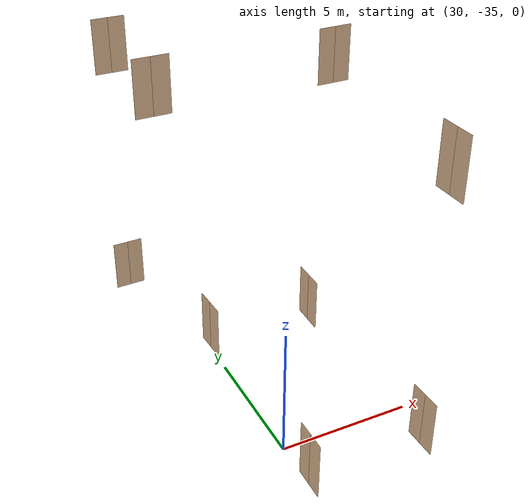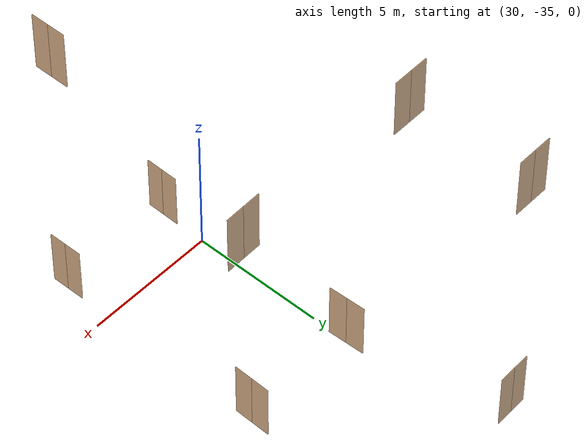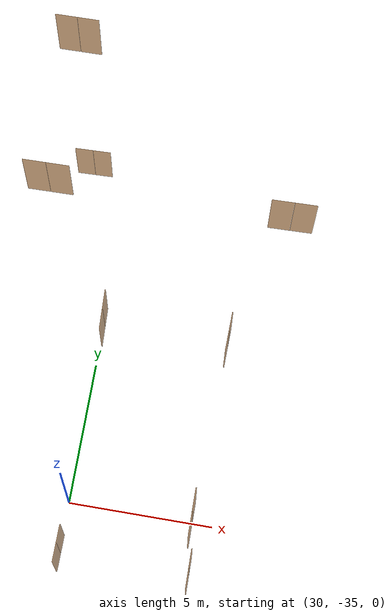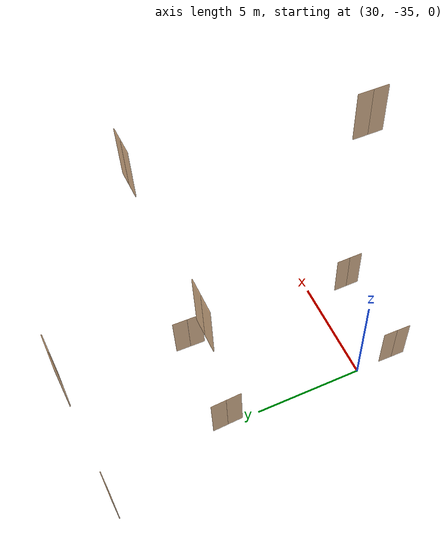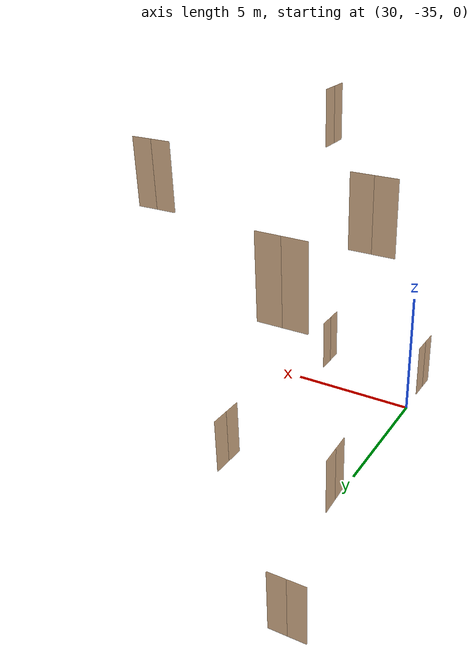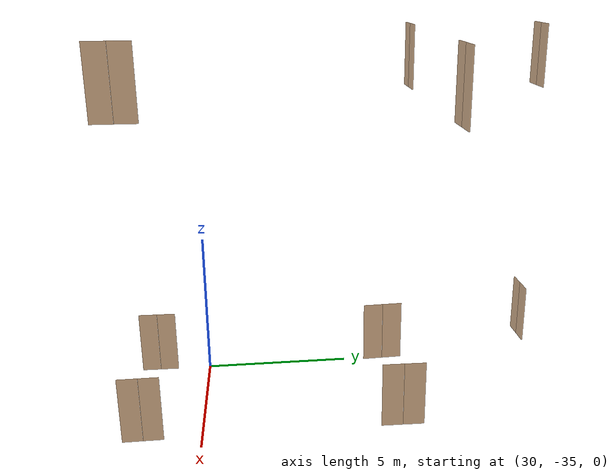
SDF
<sdf version="1.7">
 <world name="sim_world">
  <model name="door28">
   <pose>28.62821711822142 -22.812442178283362 0.0 0 0 -3.111123336385483</pose>
   <link name="right">
    <pose>0.31771576533876944 0 1.11 0 0 0</pose>
    <visual name="right_visual">
     <geometry><box><size>0.6254315306775389 0.03 2.2</size></box></geometry>
     <material>
      <ambient>0.5 0.25 0 0.6</ambient>
      <diffuse>0.5 0.25 0 0.6</diffuse>
      <pbr><metal><metalness>0.0</metalness></metal></pbr>
     </material>
    </visual>
    <collision name="right_collision">
     <geometry><box><size>0.6254315306775389 0.03 2.2</size></box></geometry>
     <surface><contact><collide_bitmask>0x02</collide_bitmask></contact></surface>
    </collision>
    <inertial>
     <mass>50.0</mass>
     <inertia><ixx>20.17041666666667</ixx><iyy>21.79651916485688</iyy><izz>1.6336024981902053</izz></inertia>
    </inertial>
   </link>
   <joint name="right_joint" type="revolute">
    <parent>world</parent>
    <child>right</child>
    <axis><xyz>0 0 -1</xyz><limit><lower>0</lower><upper>1.57</upper></limit></axis>
    <pose>0.31771576533876944 0 0 0 0 0</pose>
   </joint>
   <link name="left">
    <pose>-0.31771576533876944 0 1.11 0 0 0</pose>
    <visual name="left_visual">
     <geometry><box><size>0.6254315306775389 0.03 2.2</size></box></geometry>
     <material>
      <ambient>0.5 0.25 0 0.6</ambient>
      <diffuse>0.5 0.25 0 0.6</diffuse>
      <pbr><metal><metalness>0.0</metalness></metal></pbr>
     </material>
    </visual>
    <collision name="left_collision">
     <geometry><box><size>0.6254315306775389 0.03 2.2</size></box></geometry>
     <surface><contact><collide_bitmask>0x02</collide_bitmask></contact></surface>
    </collision>
    <inertial>
     <mass>50.0</mass>
     <inertia><ixx>20.17041666666667</ixx><iyy>21.79651916485688</iyy><izz>1.6336024981902053</izz></inertia>
    </inertial>
   </link>
   <joint name="left_joint" type="revolute">
    <parent>world</parent>
    <child>left</child>
    <axis><xyz>0 0 -1</xyz><limit><lower>-1.57</lower><upper>0</upper></limit></axis>
    <pose>-0.31771576533876944 0 0 0 0 0</pose>
   </joint>
   <plugin name="register_component" filename="libregister_component.so">
    <component name="Door">
     <v_max_door>0.5</v_max_door>
     <a_max_door>0.3</a_max_door>
     <a_nom_door>0.15</a_nom_door>
     <dx_min_door>0.01</dx_min_door>
     <f_max_door>500.0</f_max_door>
     <ros_interface>true</ros_interface>
     <door name="door28" type="DoubleSwingDoor" left_joint_name="left_joint" right_joint_name="right_joint"/>
    </component>
   </plugin>
  </model>
  <model name="door30">
   <pose>30.040495126179326 -28.557836024886143 0.0 0 0 1.6121950248561225</pose>
   <link name="right">
    <pose>0.3552340786433586 0 1.11 0 0 0</pose>
    <visual name="right_visual">
     <geometry><box><size>0.7004681572867172 0.03 2.2</size></box></geometry>
     <material>
      <ambient>0.5 0.25 0 0.6</ambient>
      <diffuse>0.5 0.25 0 0.6</diffuse>
      <pbr><metal><metalness>0.0</metalness></metal></pbr>
     </material>
    </visual>
    <collision name="right_collision">
     <geometry><box><size>0.7004681572867172 0.03 2.2</size></box></geometry>
     <surface><contact><collide_bitmask>0x02</collide_bitmask></contact></surface>
    </collision>
    <inertial>
     <mass>50.0</mass>
     <inertia><ixx>20.17041666666667</ixx><iyy>22.21106516405271</iyy><izz>2.0481484973860384</izz></inertia>
    </inertial>
   </link>
   <joint name="right_joint" type="revolute">
    <parent>world</parent>
    <child>right</child>
    <axis><xyz>0 0 1</xyz><limit><lower>0</lower><upper>1.57</upper></limit></axis>
    <pose>0.3552340786433586 0 0 0 0 0</pose>
   </joint>
   <link name="left">
    <pose>-0.3552340786433586 0 1.11 0 0 0</pose>
    <visual name="left_visual">
     <geometry><box><size>0.7004681572867172 0.03 2.2</size></box></geometry>
     <material>
      <ambient>0.5 0.25 0 0.6</ambient>
      <diffuse>0.5 0.25 0 0.6</diffuse>
      <pbr><metal><metalness>0.0</metalness></metal></pbr>
     </material>
    </visual>
    <collision name="left_collision">
     <geometry><box><size>0.7004681572867172 0.03 2.2</size></box></geometry>
     <surface><contact><collide_bitmask>0x02</collide_bitmask></contact></surface>
    </collision>
    <inertial>
     <mass>50.0</mass>
     <inertia><ixx>20.17041666666667</ixx><iyy>22.21106516405271</iyy><izz>2.0481484973860384</izz></inertia>
    </inertial>
   </link>
   <joint name="left_joint" type="revolute">
    <parent>world</parent>
    <child>left</child>
    <axis><xyz>0 0 1</xyz><limit><lower>-1.57</lower><upper>0</upper></limit></axis>
    <pose>-0.3552340786433586 0 0 0 0 0</pose>
   </joint>
   <plugin name="register_component" filename="libregister_component.so">
    <component name="Door">
     <v_max_door>0.5</v_max_door>
     <a_max_door>0.3</a_max_door>
     <a_nom_door>0.15</a_nom_door>
     <dx_min_door>0.01</dx_min_door>
     <f_max_door>500.0</f_max_door>
     <ros_interface>true</ros_interface>
     <door name="door30" type="DoubleSwingDoor" left_joint_name="left_joint" right_joint_name="right_joint"/>
    </component>
   </plugin>
  </model>
  <model name="door31">
   <pose>34.479729065134876 -28.588407859089635 0.0 0 0 1.5524595629320213</pose>
   <link name="right">
    <pose>0.3502875451155866 0 1.11 0 0 0</pose>
    <visual name="right_visual">
     <geometry><box><size>0.6905750902311731 0.03 2.2</size></box></geometry>
     <material>
      <ambient>0.5 0.25 0 0.6</ambient>
      <diffuse>0.5 0.25 0 0.6</diffuse>
      <pbr><metal><metalness>0.0</metalness></metal></pbr>
     </material>
    </visual>
    <collision name="right_collision">
     <geometry><box><size>0.6905750902311731 0.03 2.2</size></box></geometry>
     <surface><contact><collide_bitmask>0x02</collide_bitmask></contact></surface>
    </collision>
    <inertial>
     <mass>50.0</mass>
     <inertia><ixx>20.17041666666667</ixx><iyy>22.153724813532477</iyy><izz>1.990808146865804</izz></inertia>
    </inertial>
   </link>
   <joint name="right_joint" type="revolute">
    <parent>world</parent>
    <child>right</child>
    <axis><xyz>0 0 -1</xyz><limit><lower>0</lower><upper>1.57</upper></limit></axis>
    <pose>0.3502875451155866 0 0 0 0 0</pose>
   </joint>
   <link name="left">
    <pose>-0.3502875451155866 0 1.11 0 0 0</pose>
    <visual name="left_visual">
     <geometry><box><size>0.6905750902311731 0.03 2.2</size></box></geometry>
     <material>
      <ambient>0.5 0.25 0 0.6</ambient>
      <diffuse>0.5 0.25 0 0.6</diffuse>
      <pbr><metal><metalness>0.0</metalness></metal></pbr>
     </material>
    </visual>
    <collision name="left_collision">
     <geometry><box><size>0.6905750902311731 0.03 2.2</size></box></geometry>
     <surface><contact><collide_bitmask>0x02</collide_bitmask></contact></surface>
    </collision>
    <inertial>
     <mass>50.0</mass>
     <inertia><ixx>20.17041666666667</ixx><iyy>22.153724813532477</iyy><izz>1.990808146865804</izz></inertia>
    </inertial>
   </link>
   <joint name="left_joint" type="revolute">
    <parent>world</parent>
    <child>left</child>
    <axis><xyz>0 0 -1</xyz><limit><lower>-1.57</lower><upper>0</upper></limit></axis>
    <pose>-0.3502875451155866 0 0 0 0 0</pose>
   </joint>
   <plugin name="register_component" filename="libregister_component.so">
    <component name="Door">
     <v_max_door>0.5</v_max_door>
     <a_max_door>0.3</a_max_door>
     <a_nom_door>0.15</a_nom_door>
     <dx_min_door>0.01</dx_min_door>
     <f_max_door>500.0</f_max_door>
     <ros_interface>true</ros_interface>
     <door name="door31" type="DoubleSwingDoor" left_joint_name="left_joint" right_joint_name="right_joint"/>
    </component>
   </plugin>
  </model>
  <model name="door33">
   <pose>30.02330782663691 -36.78568676323731 0.0 0 0 1.5595276240747098</pose>
   <link name="right">
    <pose>0.32152621897079736 0 1.11 0 0 0</pose>
    <visual name="right_visual">
     <geometry><box><size>0.6330524379415947 0.03 2.2</size></box></geometry>
     <material>
      <ambient>0.5 0.25 0 0.6</ambient>
      <diffuse>0.5 0.25 0 0.6</diffuse>
      <pbr><metal><metalness>0.0</metalness></metal></pbr>
     </material>
    </visual>
    <collision name="right_collision">
     <geometry><box><size>0.6330524379415947 0.03 2.2</size></box></geometry>
     <surface><contact><collide_bitmask>0x02</collide_bitmask></contact></surface>
    </collision>
    <inertial>
     <mass>50.0</mass>
     <inertia><ixx>20.17041666666667</ixx><iyy>21.836480788265824</iyy><izz>1.6735641215991528</izz></inertia>
    </inertial>
   </link>
   <joint name="right_joint" type="revolute">
    <parent>world</parent>
    <child>right</child>
    <axis><xyz>0 0 1</xyz><limit><lower>0</lower><upper>1.57</upper></limit></axis>
    <pose>0.32152621897079736 0 0 0 0 0</pose>
   </joint>
   <link name="left">
    <pose>-0.32152621897079736 0 1.11 0 0 0</pose>
    <visual name="left_visual">
     <geometry><box><size>0.6330524379415947 0.03 2.2</size></box></geometry>
     <material>
      <ambient>0.5 0.25 0 0.6</ambient>
      <diffuse>0.5 0.25 0 0.6</diffuse>
      <pbr><metal><metalness>0.0</metalness></metal></pbr>
     </material>
    </visual>
    <collision name="left_collision">
     <geometry><box><size>0.6330524379415947 0.03 2.2</size></box></geometry>
     <surface><contact><collide_bitmask>0x02</collide_bitmask></contact></surface>
    </collision>
    <inertial>
     <mass>50.0</mass>
     <inertia><ixx>20.17041666666667</ixx><iyy>21.836480788265824</iyy><izz>1.6735641215991528</izz></inertia>
    </inertial>
   </link>
   <joint name="left_joint" type="revolute">
    <parent>world</parent>
    <child>left</child>
    <axis><xyz>0 0 1</xyz><limit><lower>-1.57</lower><upper>0</upper></limit></axis>
    <pose>-0.32152621897079736 0 0 0 0 0</pose>
   </joint>
   <plugin name="register_component" filename="libregister_component.so">
    <component name="Door">
     <v_max_door>0.5</v_max_door>
     <a_max_door>0.3</a_max_door>
     <a_nom_door>0.15</a_nom_door>
     <dx_min_door>0.01</dx_min_door>
     <f_max_door>500.0</f_max_door>
     <ros_interface>true</ros_interface>
     <door name="door33" type="DoubleSwingDoor" left_joint_name="left_joint" right_joint_name="right_joint"/>
    </component>
   </plugin>
  </model>
  <model name="door32">
   <pose>34.4834569724398 -36.831993660000975 0.0 0 0 1.583004454742966</pose>
   <link name="right">
    <pose>0.32192653946186495 0 1.11 0 0 0</pose>
    <visual name="right_visual">
     <geometry><box><size>0.6338530789237299 0.03 2.2</size></box></geometry>
     <material>
      <ambient>0.5 0.25 0 0.6</ambient>
      <diffuse>0.5 0.25 0 0.6</diffuse>
      <pbr><metal><metalness>0.0</metalness></metal></pbr>
     </material>
    </visual>
    <collision name="right_collision">
     <geometry><box><size>0.6338530789237299 0.03 2.2</size></box></geometry>
     <surface><contact><collide_bitmask>0x02</collide_bitmask></contact></surface>
    </collision>
    <inertial>
     <mass>50.0</mass>
     <inertia><ixx>20.17041666666667</ixx><iyy>21.840707190254555</iyy><izz>1.677790523587884</izz></inertia>
    </inertial>
   </link>
   <joint name="right_joint" type="revolute">
    <parent>world</parent>
    <child>right</child>
    <axis><xyz>0 0 -1</xyz><limit><lower>0</lower><upper>1.57</upper></limit></axis>
    <pose>0.32192653946186495 0 0 0 0 0</pose>
   </joint>
   <link name="left">
    <pose>-0.32192653946186495 0 1.11 0 0 0</pose>
    <visual name="left_visual">
     <geometry><box><size>0.6338530789237299 0.03 2.2</size></box></geometry>
     <material>
      <ambient>0.5 0.25 0 0.6</ambient>
      <diffuse>0.5 0.25 0 0.6</diffuse>
      <pbr><metal><metalness>0.0</metalness></metal></pbr>
     </material>
    </visual>
    <collision name="left_collision">
     <geometry><box><size>0.6338530789237299 0.03 2.2</size></box></geometry>
     <surface><contact><collide_bitmask>0x02</collide_bitmask></contact></surface>
    </collision>
    <inertial>
     <mass>50.0</mass>
     <inertia><ixx>20.17041666666667</ixx><iyy>21.840707190254555</iyy><izz>1.677790523587884</izz></inertia>
    </inertial>
   </link>
   <joint name="left_joint" type="revolute">
    <parent>world</parent>
    <child>left</child>
    <axis><xyz>0 0 -1</xyz><limit><lower>-1.57</lower><upper>0</upper></limit></axis>
    <pose>-0.32192653946186495 0 0 0 0 0</pose>
   </joint>
   <plugin name="register_component" filename="libregister_component.so">
    <component name="Door">
     <v_max_door>0.5</v_max_door>
     <a_max_door>0.3</a_max_door>
     <a_nom_door>0.15</a_nom_door>
     <dx_min_door>0.01</dx_min_door>
     <f_max_door>500.0</f_max_door>
     <ros_interface>true</ros_interface>
     <door name="door32" type="DoubleSwingDoor" left_joint_name="left_joint" right_joint_name="right_joint"/>
    </component>
   </plugin>
  </model>
  <model name="N1_door21">
   <pose>28.61204440129893 -22.81229988013395 10.0 0 0 -3.1313552351298206</pose>
   <link name="right">
    <pose>0.33106743033399394 0 1.11 0 0 0</pose>
    <visual name="right_visual">
     <geometry><box><size>0.6521348606679879 0.03 2.2</size></box></geometry>
     <material>
      <ambient>0.5 0.25 0 0.6</ambient>
      <diffuse>0.5 0.25 0 0.6</diffuse>
      <pbr><metal><metalness>0.0</metalness></metal></pbr>
     </material>
    </visual>
    <collision name="right_collision">
     <geometry><box><size>0.6521348606679879 0.03 2.2</size></box></geometry>
     <surface><contact><collide_bitmask>0x02</collide_bitmask></contact></surface>
    </collision>
    <inertial>
     <mass>50.0</mass>
     <inertia><ixx>20.17041666666667</ixx><iyy>21.938666152076905</iyy><izz>1.7757494854102334</izz></inertia>
    </inertial>
   </link>
   <joint name="right_joint" type="revolute">
    <parent>world</parent>
    <child>right</child>
    <axis><xyz>0 0 -1</xyz><limit><lower>0</lower><upper>1.57</upper></limit></axis>
    <pose>0.33106743033399394 0 0 0 0 0</pose>
   </joint>
   <link name="left">
    <pose>-0.33106743033399394 0 1.11 0 0 0</pose>
    <visual name="left_visual">
     <geometry><box><size>0.6521348606679879 0.03 2.2</size></box></geometry>
     <material>
      <ambient>0.5 0.25 0 0.6</ambient>
      <diffuse>0.5 0.25 0 0.6</diffuse>
      <pbr><metal><metalness>0.0</metalness></metal></pbr>
     </material>
    </visual>
    <collision name="left_collision">
     <geometry><box><size>0.6521348606679879 0.03 2.2</size></box></geometry>
     <surface><contact><collide_bitmask>0x02</collide_bitmask></contact></surface>
    </collision>
    <inertial>
     <mass>50.0</mass>
     <inertia><ixx>20.17041666666667</ixx><iyy>21.938666152076905</iyy><izz>1.7757494854102334</izz></inertia>
    </inertial>
   </link>
   <joint name="left_joint" type="revolute">
    <parent>world</parent>
    <child>left</child>
    <axis><xyz>0 0 -1</xyz><limit><lower>-1.57</lower><upper>0</upper></limit></axis>
    <pose>-0.33106743033399394 0 0 0 0 0</pose>
   </joint>
   <plugin name="register_component" filename="libregister_component.so">
    <component name="Door">
     <v_max_door>0.5</v_max_door>
     <a_max_door>0.3</a_max_door>
     <a_nom_door>0.15</a_nom_door>
     <dx_min_door>0.01</dx_min_door>
     <f_max_door>500.0</f_max_door>
     <ros_interface>true</ros_interface>
     <door name="N1_door21" type="DoubleSwingDoor" left_joint_name="left_joint" right_joint_name="right_joint"/>
    </component>
   </plugin>
  </model>
  <model name="N1_door23">
   <pose>28.588644656380417 -27.529371928460275 10.0 0 0 -3.127846449737378</pose>
   <link name="right">
    <pose>0.3464047496220583 0 1.11 0 0 0</pose>
    <visual name="right_visual">
     <geometry><box><size>0.6828094992441166 0.03 2.2</size></box></geometry>
     <material>
      <ambient>0.5 0.25 0 0.6</ambient>
      <diffuse>0.5 0.25 0 0.6</diffuse>
      <pbr><metal><metalness>0.0</metalness></metal></pbr>
     </material>
    </visual>
    <collision name="right_collision">
     <geometry><box><size>0.6828094992441166 0.03 2.2</size></box></geometry>
     <surface><contact><collide_bitmask>0x02</collide_bitmask></contact></surface>
    </collision>
    <inertial>
     <mass>50.0</mass>
     <inertia><ixx>20.17041666666667</ixx><iyy>22.10928671774168</iyy><izz>1.9463700510750055</izz></inertia>
    </inertial>
   </link>
   <joint name="right_joint" type="revolute">
    <parent>world</parent>
    <child>right</child>
    <axis><xyz>0 0 1</xyz><limit><lower>0</lower><upper>1.57</upper></limit></axis>
    <pose>0.3464047496220583 0 0 0 0 0</pose>
   </joint>
   <link name="left">
    <pose>-0.3464047496220583 0 1.11 0 0 0</pose>
    <visual name="left_visual">
     <geometry><box><size>0.6828094992441166 0.03 2.2</size></box></geometry>
     <material>
      <ambient>0.5 0.25 0 0.6</ambient>
      <diffuse>0.5 0.25 0 0.6</diffuse>
      <pbr><metal><metalness>0.0</metalness></metal></pbr>
     </material>
    </visual>
    <collision name="left_collision">
     <geometry><box><size>0.6828094992441166 0.03 2.2</size></box></geometry>
     <surface><contact><collide_bitmask>0x02</collide_bitmask></contact></surface>
    </collision>
    <inertial>
     <mass>50.0</mass>
     <inertia><ixx>20.17041666666667</ixx><iyy>22.10928671774168</iyy><izz>1.9463700510750055</izz></inertia>
    </inertial>
   </link>
   <joint name="left_joint" type="revolute">
    <parent>world</parent>
    <child>left</child>
    <axis><xyz>0 0 1</xyz><limit><lower>-1.57</lower><upper>0</upper></limit></axis>
    <pose>-0.3464047496220583 0 0 0 0 0</pose>
   </joint>
   <plugin name="register_component" filename="libregister_component.so">
    <component name="Door">
     <v_max_door>0.5</v_max_door>
     <a_max_door>0.3</a_max_door>
     <a_nom_door>0.15</a_nom_door>
     <dx_min_door>0.01</dx_min_door>
     <f_max_door>500.0</f_max_door>
     <ros_interface>true</ros_interface>
     <door name="N1_door23" type="DoubleSwingDoor" left_joint_name="left_joint" right_joint_name="right_joint"/>
    </component>
   </plugin>
  </model>
  <model name="N1_door24">
   <pose>35.856823218207154 -27.529863936593088 10.0 0 0 -3.116224555199849</pose>
   <link name="right">
    <pose>0.3352836521446558 0 1.11 0 0 0</pose>
    <visual name="right_visual">
     <geometry><box><size>0.6605673042893115 0.03 2.2</size></box></geometry>
     <material>
      <ambient>0.5 0.25 0 0.6</ambient>
      <diffuse>0.5 0.25 0 0.6</diffuse>
      <pbr><metal><metalness>0.0</metalness></metal></pbr>
     </material>
    </visual>
    <collision name="right_collision">
     <geometry><box><size>0.6605673042893115 0.03 2.2</size></box></geometry>
     <surface><contact><collide_bitmask>0x02</collide_bitmask></contact></surface>
    </collision>
    <inertial>
     <mass>50.0</mass>
     <inertia><ixx>20.17041666666667</ixx><iyy>21.984788181233537</iyy><izz>1.8218715145668665</izz></inertia>
    </inertial>
   </link>
   <joint name="right_joint" type="revolute">
    <parent>world</parent>
    <child>right</child>
    <axis><xyz>0 0 1</xyz><limit><lower>0</lower><upper>1.57</upper></limit></axis>
    <pose>0.3352836521446558 0 0 0 0 0</pose>
   </joint>
   <link name="left">
    <pose>-0.3352836521446558 0 1.11 0 0 0</pose>
    <visual name="left_visual">
     <geometry><box><size>0.6605673042893115 0.03 2.2</size></box></geometry>
     <material>
      <ambient>0.5 0.25 0 0.6</ambient>
      <diffuse>0.5 0.25 0 0.6</diffuse>
      <pbr><metal><metalness>0.0</metalness></metal></pbr>
     </material>
    </visual>
    <collision name="left_collision">
     <geometry><box><size>0.6605673042893115 0.03 2.2</size></box></geometry>
     <surface><contact><collide_bitmask>0x02</collide_bitmask></contact></surface>
    </collision>
    <inertial>
     <mass>50.0</mass>
     <inertia><ixx>20.17041666666667</ixx><iyy>21.984788181233537</iyy><izz>1.8218715145668665</izz></inertia>
    </inertial>
   </link>
   <joint name="left_joint" type="revolute">
    <parent>world</parent>
    <child>left</child>
    <axis><xyz>0 0 1</xyz><limit><lower>-1.57</lower><upper>0</upper></limit></axis>
    <pose>-0.3352836521446558 0 0 0 0 0</pose>
   </joint>
   <plugin name="register_component" filename="libregister_component.so">
    <component name="Door">
     <v_max_door>0.5</v_max_door>
     <a_max_door>0.3</a_max_door>
     <a_nom_door>0.15</a_nom_door>
     <dx_min_door>0.01</dx_min_door>
     <f_max_door>500.0</f_max_door>
     <ros_interface>true</ros_interface>
     <door name="N1_door24" type="DoubleSwingDoor" left_joint_name="left_joint" right_joint_name="right_joint"/>
    </component>
   </plugin>
  </model>
  <model name="N1_door26">
   <pose>34.456474453978004 -36.79701329409751 10.0 0 0 1.5779649527833903</pose>
   <link name="right">
    <pose>0.33283360908703596 0 1.11 0 0 0</pose>
    <visual name="right_visual">
     <geometry><box><size>0.6556672181740719 0.03 2.2</size></box></geometry>
     <material>
      <ambient>0.5 0.25 0 0.6</ambient>
      <diffuse>0.5 0.25 0 0.6</diffuse>
      <pbr><metal><metalness>0.0</metalness></metal></pbr>
     </material>
    </visual>
    <collision name="right_collision">
     <geometry><box><size>0.6556672181740719 0.03 2.2</size></box></geometry>
     <surface><contact><collide_bitmask>0x02</collide_bitmask></contact></surface>
    </collision>
    <inertial>
     <mass>50.0</mass>
     <inertia><ixx>20.17041666666667</ixx><iyy>21.95791458745053</iyy><izz>1.7949979207838587</izz></inertia>
    </inertial>
   </link>
   <joint name="right_joint" type="revolute">
    <parent>world</parent>
    <child>right</child>
    <axis><xyz>0 0 -1</xyz><limit><lower>0</lower><upper>1.57</upper></limit></axis>
    <pose>0.33283360908703596 0 0 0 0 0</pose>
   </joint>
   <link name="left">
    <pose>-0.33283360908703596 0 1.11 0 0 0</pose>
    <visual name="left_visual">
     <geometry><box><size>0.6556672181740719 0.03 2.2</size></box></geometry>
     <material>
      <ambient>0.5 0.25 0 0.6</ambient>
      <diffuse>0.5 0.25 0 0.6</diffuse>
      <pbr><metal><metalness>0.0</metalness></metal></pbr>
     </material>
    </visual>
    <collision name="left_collision">
     <geometry><box><size>0.6556672181740719 0.03 2.2</size></box></geometry>
     <surface><contact><collide_bitmask>0x02</collide_bitmask></contact></surface>
    </collision>
    <inertial>
     <mass>50.0</mass>
     <inertia><ixx>20.17041666666667</ixx><iyy>21.95791458745053</iyy><izz>1.7949979207838587</izz></inertia>
    </inertial>
   </link>
   <joint name="left_joint" type="revolute">
    <parent>world</parent>
    <child>left</child>
    <axis><xyz>0 0 -1</xyz><limit><lower>-1.57</lower><upper>0</upper></limit></axis>
    <pose>-0.33283360908703596 0 0 0 0 0</pose>
   </joint>
   <plugin name="register_component" filename="libregister_component.so">
    <component name="Door">
     <v_max_door>0.5</v_max_door>
     <a_max_door>0.3</a_max_door>
     <a_nom_door>0.15</a_nom_door>
     <dx_min_door>0.01</dx_min_door>
     <f_max_door>500.0</f_max_door>
     <ros_interface>true</ros_interface>
     <door name="N1_door26" type="DoubleSwingDoor" left_joint_name="left_joint" right_joint_name="right_joint"/>
    </component>
   </plugin>
  </model>
 </world>
</sdf>
